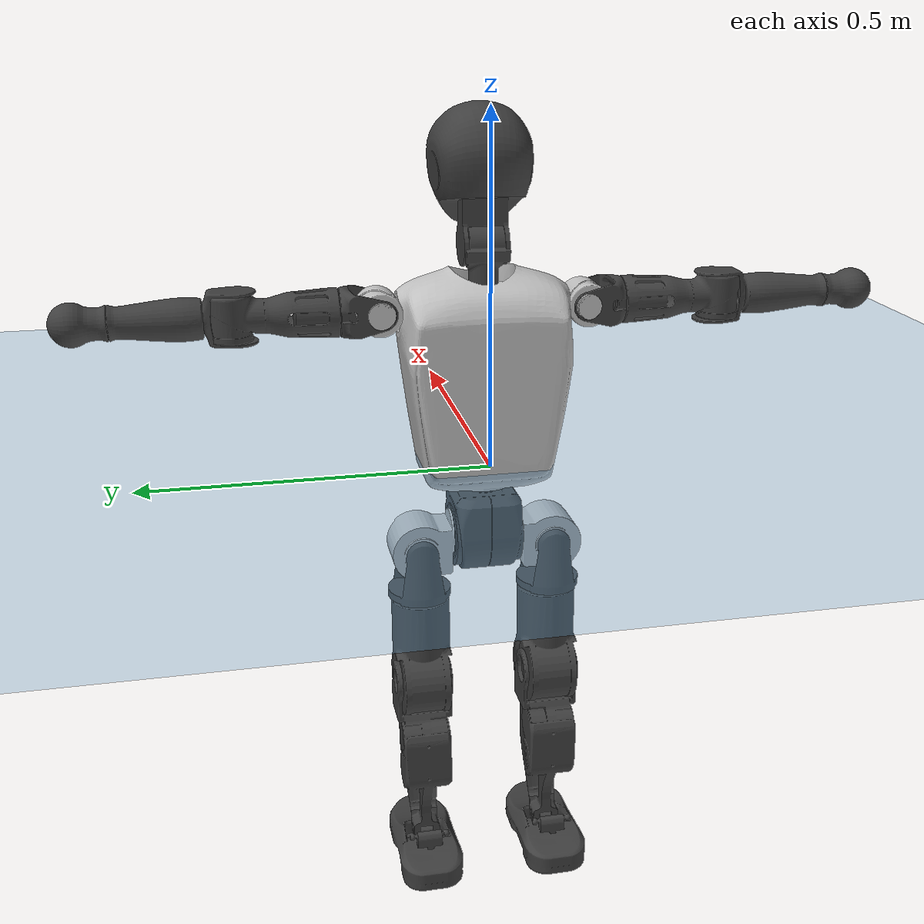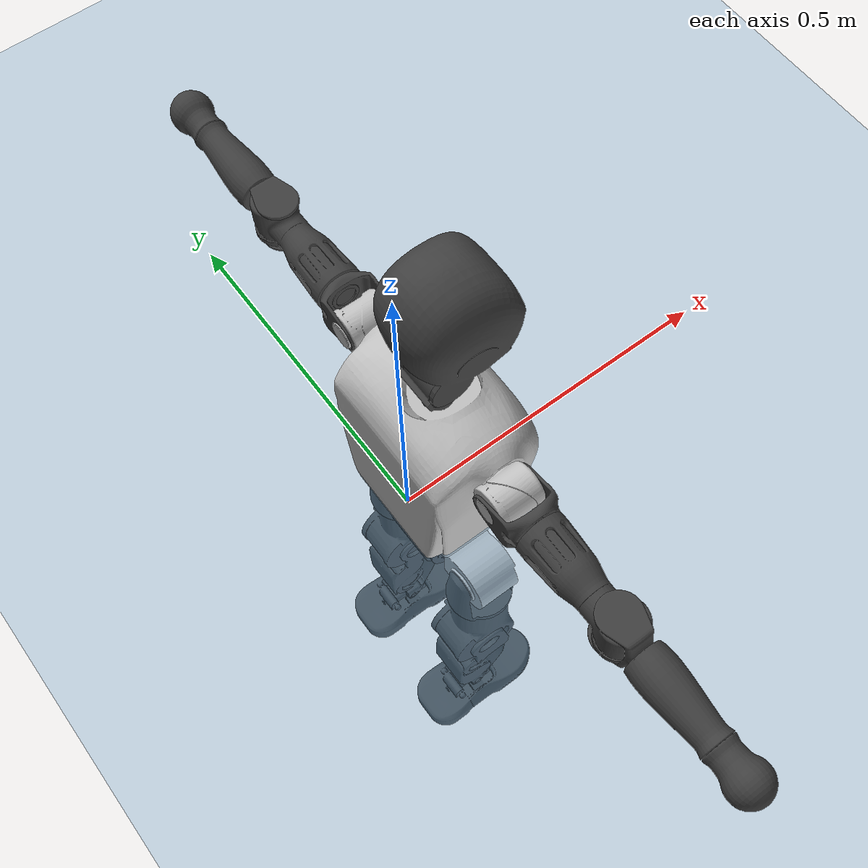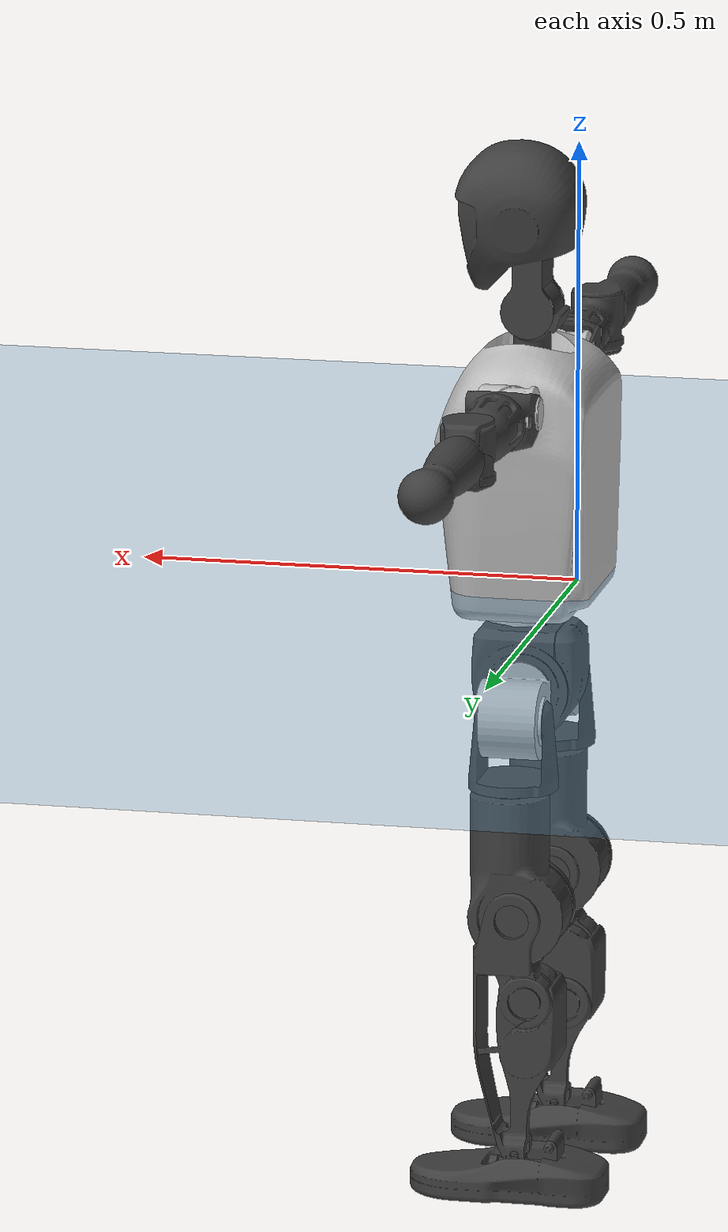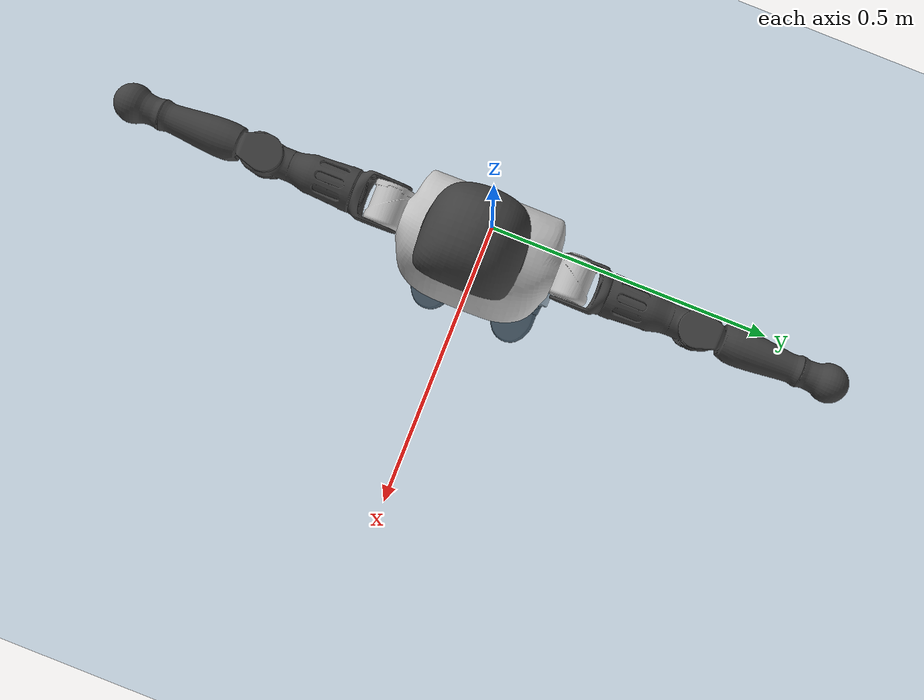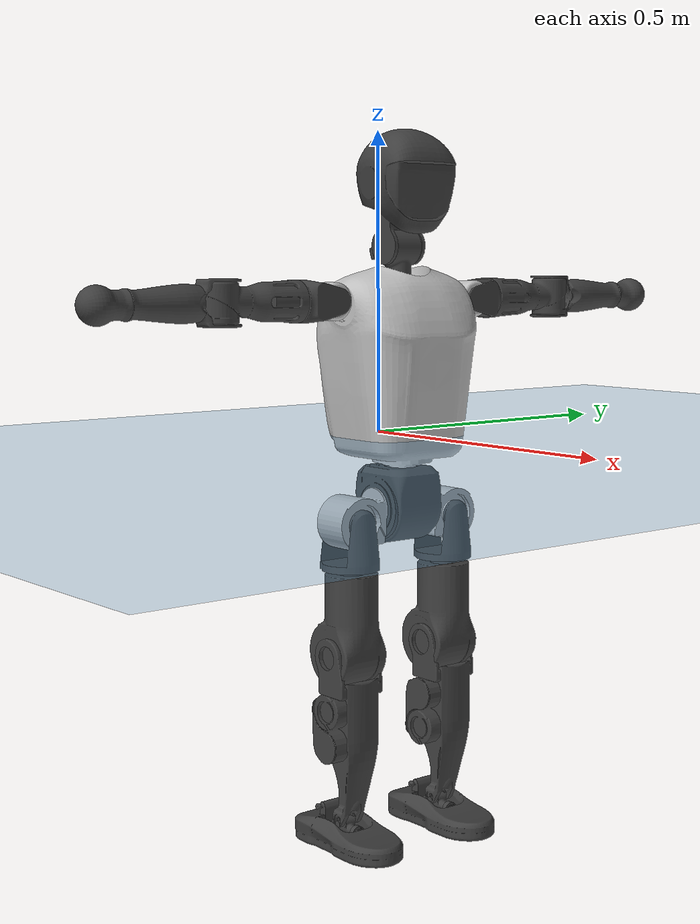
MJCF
<mujoco model="T1">
  <compiler angle="radian" assetdir="assets" balanceinertia="true" inertiafromgeom="false"/>

  <option timestep="0.005" density="1.2" viscosity="2e-05"/>

  <size nkey="1"/>

  <visual>
    <quality shadowsize="8192"/>
    <map shadowclip="0.5"/>
  </visual>

  <default>
    <default class="/">
      <joint armature="0.01" damping="0.01" frictionloss="0.1"/>
      <geom contype="0" conaffinity="0" group="1" solref="-1000 -80"/>
      <site size="0.01 0.005 0.005" group="5"/>
      <general forcelimited="true" biastype="affine" gainprm="25" biasprm="0 -25 -0.6"/>
      <default class="t1">
        <geom rgba="0.25 0.25 0.25 1"/>
        <default class="visual">
          <geom type="mesh" group="2"/>
        </default>
        <default class="collision">
          <geom group="3"/>
        </default>
        <default class="foot">
          <geom size="0.1115 0.05 0.015" type="box" condim="6" group="4" priority="1" solimp="0.015 1 0.015"/>
        </default>
        <default class="reward_collision_sphere">
          <geom group="5" rgba="1 0 0 1"/>
        </default>
      </default>
    </default>
  </default>

  <asset>
    <texture type="skybox" colorspace="auto" name="//unnamed_texture_0" builtin="gradient" rgb1="0.95 0.95 0.95" rgb2="0.95 0.95 0.95" width="100" height="600"/>
    <texture type="2d" colorspace="auto" name="texplane" builtin="checker" rgb1="0.345 0.575 0.748" rgb2="0.345 0.575 0.748" markrgb="1 1 1" width="512" height="512"/>
    <material name="MatPlane" class="/" texture="texplane" texuniform="true" texrepeat="2 2" specular="0.9"/>
    <mesh name="Trunk" class="/" file="Trunk.stl"/>
    <mesh name="H1" class="/" file="H1.stl"/>
    <mesh name="H2" class="/" file="H2.stl"/>
    <mesh name="AL1" class="/" file="AL1.stl"/>
    <mesh name="AL2" class="/" file="AL2.stl"/>
    <mesh name="AL3" class="/" file="AL3.stl"/>
    <mesh name="left_hand_link" class="/" file="left_hand_link.stl"/>
    <mesh name="AR1" class="/" file="AR1.stl"/>
    <mesh name="AR2" class="/" file="AR2.stl"/>
    <mesh name="AR3" class="/" file="AR3.stl"/>
    <mesh name="right_hand_link" class="/" file="right_hand_link.stl"/>
    <mesh name="Waist" class="/" file="Waist.stl"/>
    <mesh name="Hip_Pitch_Left" class="/" file="Hip_Pitch_Left.stl"/>
    <mesh name="Hip_Roll_Left" class="/" file="Hip_Roll_Left.stl"/>
    <mesh name="Hip_Yaw_Left" class="/" file="Hip_Yaw_Left.stl"/>
    <mesh name="Shank_Left" class="/" file="Shank_Left.stl"/>
    <mesh name="Ankle_Cross_Left" class="/" file="Ankle_Cross_Left.stl"/>
    <mesh name="left_foot_link" class="/" file="left_foot_link.stl"/>
    <mesh name="Hip_Pitch_Right" class="/" file="Hip_Pitch_Right.stl"/>
    <mesh name="Hip_Roll_Right" class="/" file="Hip_Roll_Right.stl"/>
    <mesh name="Hip_Yaw_Right" class="/" file="Hip_Yaw_Right.stl"/>
    <mesh name="Shank_Right" class="/" file="Shank_Right.stl"/>
    <mesh name="Ankle_Cross_Right" class="/" file="Ankle_Cross_Right.stl"/>
    <mesh name="right_foot_link" class="/" file="right_foot_link.stl"/>
  </asset>

  <worldbody>
    <geom name="floor" class="/" size="100 100 0.125" type="plane" group="0" material="MatPlane"/>
    <light name="toplight_shadow" class="/" pos="0 0 5" dir="0.0990148 0.0990148 -0.990148" type="directional" ambient="0.04 0.04 0.04" diffuse="0.55 0.55 0.55" specular="0.12 0.12 0.12"/>
    <light name="toplight_fill" class="/" pos="0 0 5" dir="0.0990148 0.0990148 -0.990148" type="directional" castshadow="false" ambient="0.04 0.04 0.04" diffuse="0.3 0.3 0.3" specular="0.08 0.08 0.08"/>
    <body name="trunk" childclass="t1" pos="-0.000290219 -0.000194871 -0.000880926" quat="1 -5.65958e-05 1.60979e-05 3.23658e-05">
      <inertial pos="0.0474935 -0.000231592 0.107331" quat="0.999957 0.000469175 -0.00929582 -0.000489657" mass="9.80461" diaginertia="0.0409915 0.0575281 0.0625029"/>
      <joint name="//unnamed_joint_0" type="free" armature="0" damping="0" frictionloss="0"/>
      <geom name="//unnamed_geom_1" class="visual" rgba="0.76 0.76 0.76 1" mesh="Trunk"/>
      <geom name="//unnamed_geom_2" class="collision" size="0.0705249 0.0940331 0.14105" pos="0.0512 0 0.12271" type="box"/>
      <geom name="//unnamed_geom_3" class="reward_collision_sphere" size="0.108138" pos="0.0512 0 0.102258"/>
      <geom name="//unnamed_geom_4" class="reward_collision_sphere" size="0.014105" pos="0.0512 0.0803314 0"/>
      <geom name="//unnamed_geom_5" class="reward_collision_sphere" size="0.014105" pos="0.0512 -0.0803314 0"/>
      <geom name="//unnamed_geom_6" class="reward_collision_sphere" size="0.014105" pos="0.0512 0.101123 0.184065"/>
      <geom name="//unnamed_geom_7" class="reward_collision_sphere" size="0.014105" pos="0.0512 -0.101123 0.184065"/>
      <site name="imu" pos="-0.00145962 0.00222003 -0.00102" size="0.00940331"/>
      <camera name="track" pos="0 -1.89015 0" quat="0.707107 0.707107 0 0" mode="trackcom"/>
      <camera name="ego_camera" pos="0.104107 0 0.429486" quat="-0.5 -0.5 0.5 0.5"/>
      <body name="H1" pos="0.0527272 -0.000752327 0.248369" quat="1 3.23161e-06 6.93373e-05 -7.59659e-05">
        <inertial pos="-0.00119723 -0.00191085 0.0587444" quat="0.764282 -0.0143568 0.00253134 0.644718" mass="0.370973" diaginertia="0.000109848 0.000168415 0.000167416"/>
        <joint name="AAHead_yaw" pos="0 0 0" axis="-0.00201342 0.00399289 0.99999" stiffness="0.0014173" range="-1.56205 1.56991" armature="0.00953425" damping="0.00652704" frictionloss="0.094858"/>
        <geom name="//unnamed_geom_8" class="visual" mesh="H1"/>
        <body name="H2" pos="0.000226716 0.000720388 0.0629414" quat="1 -0.000369384 8.57556e-05 0.000116616">
          <inertial pos="0.00600335 0.000629131 0.101191" quat="0.988541 0.107214 -0.0733123 -0.076926" mass="0.52139" diaginertia="0.00092007 0.00145407 0.00190556"/>
          <joint name="Head_pitch" pos="0 0 0" axis="0.00305773 -0.999993 0.00204348" range="-1.23084 0.367266" armature="0.00914768" damping="0.0106271" frictionloss="0.0935829"/>
          <geom name="//unnamed_geom_9" class="visual" mesh="H2"/>
          <geom name="//unnamed_geom_10" class="collision" size="0.0752265" pos="0.00853334 0 0.112484"/>
          <geom name="//unnamed_geom_11" class="reward_collision_sphere" size="0.0846298" pos="0.0170667 0 0.102258"/>
        </body>
      </body>
      <body name="AL1" pos="0.0501716 0.101432 0.224106" quat="1 0.000190322 0.000618898 -0.000102399">
        <inertial pos="-0.000384314 0.0417145 -0.00017811" quat="0.504928 0.496343 -0.504378 0.494261" mass="0.438709" diaginertia="0.00061119 0.000976041 0.000327984"/>
        <joint name="Left_Shoulder_Pitch" pos="0 0 0" axis="-0.00181761 0.999998 -0.000184704" range="-3.31727 1.22403" armature="0.00931764" damping="0.00592883" frictionloss="0.0982417"/>
        <geom name="//unnamed_geom_12" class="visual" rgba="0.76 0.76 0.76 1" mesh="AL1"/>
        <body name="AL2" pos="0.00168748 0.0448082 -8.37871e-07" quat="1 6.3451e-06 7.05795e-06 -4.31756e-05">
          <inertial pos="0.0033781 0.0352719 -0.000476045" quat="0.489002 0.511606 -0.488 0.510874" mass="0.131224" diaginertia="0.000179647 0.000257707 0.000193452"/>
          <joint name="Left_Shoulder_Roll" pos="0 0 0" axis="-0.999999 -0.00103328 4.00104e-05" range="-1.5689 1.7441" armature="0.00929016" damping="0.00962909" frictionloss="0.0939347"/>
          <geom name="//unnamed_geom_13" class="visual" mesh="AL2"/>
          <body name="AL3" pos="2.7986e-05 0.0575214 0.000497243" quat="1 -3.93428e-05 -1.60238e-05 -3.35288e-05">
            <inertial pos="-0.00121476 0.0805896 -0.00025908" quat="0.706333 0.707872 -0.00108226 -0.00327552" mass="0.845131" diaginertia="0.00587791 0.00953231 0.000688556"/>
            <joint name="Left_Elbow_Pitch" pos="0 0 0" axis="0.00244271 -0.999995 -0.00210453" range="-2.26631 2.25649" armature="0.00900793" damping="0.00286436" frictionloss="0.0978795"/>
            <geom name="//unnamed_geom_14" class="visual" mesh="AL3"/>
            <geom name="//unnamed_geom_15" class="collision" size="0.0282099 0.0705249" pos="0 0.0472538 0" quat="0.707105 0.707108 0 0" type="cylinder"/>
            <geom name="//unnamed_geom_16" class="reward_collision_sphere" size="0.0338519"/>
            <body name="left_hand_link" pos="0.00129531 0.138617 -4.1108e-05" quat="1 -0.00012846 0.000122786 -0.000237877">
              <inertial pos="0.000292748 0.104093 -0.000313716" quat="0.707975 0.706238 8.9686e-05 -7.52278e-05" mass="0.269982" diaginertia="0.00368234 0.00610198 0.000236776"/>
              <joint name="Left_Elbow_Yaw" pos="0 0 0" axis="0.00550363 0.00496614 0.999973" stiffness="0.00188167" range="-2.43342 -0.00361915" armature="0.00949879" damping="0.0103616" frictionloss="0.0981097"/>
              <geom name="//unnamed_geom_17" class="visual" mesh="left_hand_link"/>
              <geom name="//unnamed_geom_18" class="collision" size="0.0282099 0.082279" pos="0 0.12286 0" quat="0.707105 0.707108 0 0" type="cylinder"/>
              <geom name="//unnamed_geom_19" class="reward_collision_sphere" size="0.0470166"/>
              <geom name="//unnamed_geom_20" class="reward_collision_sphere" size="0.0329116" pos="0 0.103958 0"/>
              <geom name="//unnamed_geom_21" class="reward_collision_sphere" size="0.0329116" pos="0 0.203191 0"/>
            </body>
          </body>
        </body>
      </body>
      <body name="AR1" pos="0.0489532 -0.100728 0.223683" quat="1 0.000102119 0.000449189 4.54995e-05">
        <inertial pos="-0.00122469 -0.0426952 -0.000865472" quat="0.503488 0.498435 -0.501981 0.496062" mass="0.435511" diaginertia="0.000622555 0.000981739 0.000327858"/>
        <joint name="Right_Shoulder_Pitch" pos="0 0 0" axis="-0.000362242 -1 0.000786625" range="-1.22685 3.30815" armature="0.0094522" damping="0.00479298" frictionloss="0.0979126"/>
        <geom name="//unnamed_geom_22" class="visual" rgba="0.76 0.76 0.76 1" mesh="AR1"/>
        <body name="AR2" pos="-0.000998012 -0.0438505 0.000231133" quat="1 -1.07407e-05 -8.98458e-06 -2.50303e-06">
          <inertial pos="0.00318104 -0.0356673 -0.000477817" quat="0.511881 0.487844 -0.511853 0.487845" mass="0.133423" diaginertia="0.00018071 0.0002598 0.000195269"/>
          <joint name="Right_Shoulder_Roll" pos="0 0 0" axis="-0.999994 -0.00262453 -0.00245691" stiffness="0.00324302" range="-1.75616 1.58082" armature="0.00971153" damping="0.0030877" frictionloss="0.0956162"/>
          <geom name="//unnamed_geom_23" class="visual" mesh="AR2"/>
          <body name="AR3" pos="-0.00038079 -0.0579085 0.000521014" quat="1 -5.08858e-06 2.50107e-05 5.39328e-05">
            <inertial pos="-0.000253719 -0.080927 -0.000385483" quat="0.705712 0.708495 0.00228583 0.00116532" mass="0.852642" diaginertia="0.00577015 0.00973846 0.000688394"/>
            <joint name="Right_Elbow_Pitch" pos="0 0 0" axis="-0.00207418 0.999996 -0.00178409" stiffness="0.000491638" range="-2.2896 2.28324" armature="0.00941766" damping="0.00492916" frictionloss="0.0936807"/>
            <geom name="//unnamed_geom_24" class="visual" mesh="AR3"/>
            <geom name="//unnamed_geom_25" class="collision" size="0.0282099 0.0705249" pos="0 -0.0472538 0" quat="0.707105 0.707108 0 0" type="cylinder"/>
            <geom name="//unnamed_geom_26" class="reward_collision_sphere" size="0.0338519"/>
            <body name="right_hand_link" pos="-0.000883639 -0.138962 -0.000716159" quat="1 -2.98287e-05 -0.000107842 -0.000189501">
              <inertial pos="-9.75918e-05 -0.103894 0.0016483" quat="0.705823 0.708388 0.000369932 -0.000157679" mass="0.271552" diaginertia="0.00370332 0.00611482 0.000242247"/>
              <joint name="Right_Elbow_Yaw" pos="0 0 0" axis="0.0017692 0.00244209 0.999995" range="0.00474616 2.43989" armature="0.00938408" damping="0.0107849" frictionloss="0.0899152"/>
              <geom name="//unnamed_geom_27" class="visual" mesh="right_hand_link"/>
              <geom name="//unnamed_geom_28" class="collision" size="0.0282099 0.082279" pos="0 -0.12286 0" quat="0.707105 0.707108 0 0" type="cylinder"/>
              <geom name="//unnamed_geom_29" class="reward_collision_sphere" size="0.0470166"/>
              <geom name="//unnamed_geom_30" class="reward_collision_sphere" size="0.0329116" pos="0 -0.103958 0"/>
              <geom name="//unnamed_geom_31" class="reward_collision_sphere" size="0.0329116" pos="0 -0.203191 0"/>
            </body>
          </body>
        </body>
      </body>
      <body name="Waist" pos="0.0535335 -0.00146164 -0.117642" quat="1 -9.23489e-05 -7.12234e-05 0.000118719">
        <inertial pos="0.000969367 -0.00139736 0.00759138" quat="0.983699 0.000646737 -0.179808 0.00236256" mass="2.13866" diaginertia="0.00240963 0.00397344 0.00525557"/>
        <joint name="Waist" pos="0 0 0" axis="-0.00225131 0.00113078 0.999997" range="-1.56904 1.56816" armature="0.00970552" damping="0.0135222" frictionloss="0.0930598"/>
        <geom name="//unnamed_geom_32" class="visual" mesh="Waist"/>
        <body name="Hip_Pitch_Left" pos="0.000263969 0.0995065 -0.000780924" quat="1 -0.000396355 -0.000586552 -0.00013924">
          <inertial pos="0.00160075 -0.00688693 -0.0183005" quat="0.975188 0.22085 0.0152592 0.00119658" mass="0.837115" diaginertia="0.000810923 0.00108772 0.00139915"/>
          <joint name="Left_Hip_Pitch" pos="0 0 0" axis="-0.000539095 1 4.88165e-05" stiffness="0.00209951" range="-1.80741 1.56901" armature="0.00974322" damping="0.00927259" frictionloss="0.0963956"/>
          <geom name="//unnamed_geom_33" class="visual" rgba="0.76 0.76 0.76 1" mesh="Hip_Pitch_Left"/>
          <body name="Hip_Roll_Left" pos="0.00085237 0.000365185 -0.0216596" quat="1 0.000185649 0.000330924 -5.69546e-05">
            <inertial pos="0.000354119 0.000702347 -0.0552047" quat="0.707041 -0.00649479 -0.00596978 0.707117" mass="0.325062" diaginertia="0.000787451 0.0011449 0.00057662"/>
            <joint name="Left_Hip_Roll" pos="0 0 0" axis="-0.999995 -0.00230263 -0.00217983" range="-1.56955 0.201746" armature="0.00903854" damping="0.00803665" frictionloss="0.0939127"/>
            <geom name="//unnamed_geom_34" class="visual" mesh="Hip_Roll_Left"/>
            <geom name="//unnamed_geom_35" class="reward_collision_sphere" size="0.0517182"/>
            <body name="Hip_Yaw_Left" pos="0.00162909 -0.00137517 -0.0851016" quat="1 -5.06795e-06 -0.000209322 -2.25063e-05">
              <inertial pos="-0.00590719 0.000456152 -0.0912084" quat="0.695825 -0.0338797 -0.0321784 0.71669" mass="1.79781" diaginertia="0.0115949 0.0189971 0.00289924"/>
              <joint name="Left_Hip_Yaw" pos="0 0 0" axis="0.000212936 1.44687e-07 -1" range="-0.999068 1.00803" armature="0.00939482" damping="0.0130087" frictionloss="0.0898253"/>
              <geom name="//unnamed_geom_36" class="visual" mesh="Hip_Yaw_Left"/>
              <geom name="//unnamed_geom_37" class="collision" size="0.0470166 0.0752265" type="cylinder"/>
              <body name="Shank_Left" pos="-0.0107305 0.000602347 -0.136594" quat="1 -0.000147894 -0.000290315 0.000155985">
                <inertial pos="-0.00501708 0.00131226 -0.127545" quat="0.997574 0.00159745 -0.0239019 0.0653651" mass="1.42111" diaginertia="0.0156172 0.0256129 0.00206676"/>
                <joint name="Left_Knee_Pitch" pos="0 0 0" axis="0.00141892 0.999996 -0.00223732" range="-0.00477908 2.34613" armature="0.00906859" damping="0.0138887" frictionloss="0.0939839"/>
                <geom name="//unnamed_geom_38" class="visual" mesh="Shank_Left"/>
                <geom name="//unnamed_geom_39" class="collision" size="0.0470166 0.0705249" pos="0 0 -0.12271" type="cylinder"/>
                <geom name="//unnamed_geom_40" class="reward_collision_sphere" size="0.0611215"/>
                <body name="Ankle_Cross_Left" pos="-0.000838696 0.000524361 -0.286362" quat="1 -2.62299e-05 -0.000199145 -0.000170253">
                  <inertial pos="-0.00296956 -0.000219869 -0.00805291" quat="0.443179 0.551311 0.548605 0.445736" mass="0.0617013" diaginertia="1.30862e-05 1.94388e-05 1.27594e-05"/>
                  <joint name="Left_Ankle_Pitch" pos="0 0 0" axis="-0.000490585 1 -0.000263474" range="-0.880353 0.355434" armature="0.00899055" damping="0.00221826" frictionloss="0.0898462"/>
                  <geom name="//unnamed_geom_41" class="visual" mesh="Ankle_Cross_Left"/>
                  <body name="left_foot_link" pos="0.000484808 0.000400957 -0.0124169" quat="1 4.31682e-05 -6.56782e-05 -0.000280552">
                    <inertial pos="-0.000440711 0.000609518 -0.00949063" quat="0.0015394 0.619389 0.00204985 0.78508" mass="0.577389" diaginertia="0.00124571 0.00181939 0.00250419"/>
                    <joint name="Left_Ankle_Roll" pos="0 0 0" axis="-0.999985 -0.00538526 0.000146551" range="-0.438357 0.451198" armature="0.0094074" damping="0.0082551" frictionloss="0.0990781"/>
                    <geom name="//unnamed_geom_42" class="visual" mesh="left_foot_link"/>
                    <geom name="left_foot" class="foot" size="0.102575 0.047038 0.015009" pos="0.00853334 0 -0.0153388"/>
                    <geom name="//unnamed_geom_44" class="reward_collision_sphere" size="0.0488972" pos="0.00853334 0 -0.0153388"/>
                    <geom name="//unnamed_geom_45" class="reward_collision_sphere" size="0.0282099" pos="0.0810667 -0.0217367 -0.0153388"/>
                    <geom name="//unnamed_geom_46" class="reward_collision_sphere" size="0.0282099" pos="-0.0597334 -0.0217367 -0.0153388"/>
                    <site name="left_foot" class="foot" pos="0.00853334 0 -0.0153388" size="0.00940331"/>
                  </body>
                </body>
              </body>
            </body>
          </body>
        </body>
        <body name="Hip_Pitch_Right" pos="-0.000511528 -0.0998602 -0.000147584" quat="1 -0.000227809 0.000119246 -0.000288393">
          <inertial pos="0.000595183 0.00708258 -0.0176792" quat="0.973119 -0.229792 0.0152234 -0.00180159" mass="0.844637" diaginertia="0.000808913 0.00108255 0.0013849"/>
          <joint name="Right_Hip_Pitch" pos="0 0 0" axis="-0.000185833 -0.999997 -0.00240027" range="-1.57743 1.81723" armature="0.00940135" damping="0.00785273" frictionloss="0.0948329"/>
          <geom name="//unnamed_geom_47" class="visual" rgba="0.76 0.76 0.76 1" mesh="Hip_Pitch_Right"/>
          <body name="Hip_Roll_Right" pos="-0.000884819 -8.98565e-05 -0.0204761" quat="1 -0.000173668 7.41085e-05 -1.00167e-05">
            <inertial pos="0.00140672 -0.00104331 -0.0549011" quat="0.706287 -0.0035986 -0.00851788 0.707865" mass="0.32437" diaginertia="0.000791075 0.00114625 0.000580406"/>
            <joint name="Right_Hip_Roll" pos="0 0 0" axis="-0.999999 -0.00112057 -0.000220166" range="-0.210513 1.57324" armature="0.00983486" damping="0.00675802" frictionloss="0.0943041"/>
            <geom name="//unnamed_geom_48" class="visual" mesh="Hip_Roll_Right"/>
            <geom name="//unnamed_geom_49" class="reward_collision_sphere" size="0.0517182"/>
            <body name="Hip_Yaw_Right" pos="0.000502017 0.000949352 -0.083892" quat="1 0.000180402 -1.82674e-05 -5.89461e-05">
              <inertial pos="-0.00492703 -0.000681385 -0.0920467" quat="0.713593 -0.0293871 -0.0329747 0.699167" mass="1.8071" diaginertia="0.0117072 0.0192242 0.00292029"/>
              <joint name="Right_Hip_Yaw" pos="0 0 0" axis="-0.00509695 0.00218732 -0.999985" stiffness="0.00203027" range="-1.00868 1.02272" armature="0.00931301" damping="0.0110971" frictionloss="0.0936904"/>
              <geom name="//unnamed_geom_50" class="visual" mesh="Hip_Yaw_Right"/>
              <geom name="//unnamed_geom_51" class="collision" size="0.0470166 0.0752265" type="cylinder"/>
              <body name="Shank_Right" pos="-0.0121007 -0.000971503 -0.138169" quat="1 1.2978e-05 4.03098e-05 1.7536e-05">
                <inertial pos="-0.00443118 0.000155091 -0.124859" quat="0.99932 -0.00184419 -0.0226798 -0.029013" mass="1.51201" diaginertia="0.0159946 0.0264163 0.00220726"/>
                <joint name="Right_Knee_Pitch" pos="0 0 0" axis="-0.000778596 -0.999953 0.00964045" range="-2.34144 0.00430441" armature="0.00899664" damping="0.00757831" frictionloss="0.0910932"/>
                <geom name="//unnamed_geom_52" class="visual" mesh="Shank_Right"/>
                <geom name="//unnamed_geom_53" class="collision" size="0.0470166 0.0705249" pos="0 0 -0.12271" type="cylinder"/>
                <geom name="//unnamed_geom_54" class="reward_collision_sphere" size="0.0611215"/>
                <body name="Ankle_Cross_Right" pos="0.00111983 -0.00120267 -0.286401" quat="1 -5.71811e-05 3.64436e-07 0.000215818">
                  <inertial pos="-0.00362355 9.05657e-05 -0.00843963" quat="0.443054 0.551075 0.550995 0.443198" mass="0.0604419" diaginertia="1.30947e-05 1.93289e-05 1.26616e-05"/>
                  <joint name="Right_Ankle_Pitch" pos="0 0 0" axis="0.000327649 -1 -0.000179076" range="-0.335397 0.879034" armature="0.00954467" damping="0.00442192" frictionloss="0.0936966"/>
                  <geom name="//unnamed_geom_55" class="visual" mesh="Ankle_Cross_Right"/>
                  <body name="right_foot_link" pos="9.71658e-05 -0.00089503 -0.0116968" quat="1 -3.22099e-05 3.15266e-05 0.00026205">
                    <inertial pos="0.000639585 -0.000321861 -0.00940967" quat="-9.74983e-05 0.620247 -0.00028988 0.784406" mass="0.569379" diaginertia="0.00121607 0.00181841 0.00244926"/>
                    <joint name="Right_Ankle_Roll" pos="0 0 0" axis="-1 9.73117e-05 -0.000552431" range="-0.456663 0.453844" armature="0.00943999" damping="0.00831188" frictionloss="0.0962514"/>
                    <geom name="//unnamed_geom_56" class="visual" mesh="right_foot_link"/>
                    <geom name="right_foot" class="foot" size="0.0980081 0.0456274 0.0141869" pos="0.00853334 0 -0.0153388"/>
                    <geom name="//unnamed_geom_58" class="reward_collision_sphere" size="0.0376133"/>
                    <geom name="//unnamed_geom_59" class="reward_collision_sphere" size="0.0282099" pos="0.00853334 0 -0.0153388"/>
                    <geom name="//unnamed_geom_60" class="reward_collision_sphere" size="0.0282099" pos="0.0810667 0.0217367 -0.0153388"/>
                    <geom name="//unnamed_geom_61" class="reward_collision_sphere" size="0.0282099" pos="-0.0597334 0.0217367 -0.0153388"/>
                    <site name="right_foot" class="foot" pos="0.00853334 0 -0.0153388" size="0.00940331"/>
                  </body>
                </body>
              </body>
            </body>
          </body>
        </body>
      </body>
    </body>
  </worldbody>

  <contact>
    <pair class="/" geom1="floor" geom2="left_foot" name="//unnamed_contact_0"/>
    <pair class="/" geom1="floor" geom2="right_foot" name="//unnamed_contact_1"/>
  </contact>

  <actuator>
    <general name="AAHead_yaw" class="/" joint="AAHead_yaw" forcerange="-6.5461 6.5461" gainprm="23.1985" biasprm="0 -23.1985 -0.560337"/>
    <general name="Head_pitch" class="/" joint="Head_pitch" forcerange="-6.68966 6.68966" gainprm="23.1985" biasprm="0 -23.1985 -0.560337"/>
    <general name="Left_Shoulder_Pitch" class="/" joint="Left_Shoulder_Pitch" forcerange="-16.853 16.853" gainprm="23.1985" biasprm="0 -23.1985 -0.560337"/>
    <general name="Left_Shoulder_Roll" class="/" joint="Left_Shoulder_Roll" forcerange="-17.351 17.351" gainprm="23.1985" biasprm="0 -23.1985 -0.560337"/>
    <general name="Left_Elbow_Pitch" class="/" joint="Left_Elbow_Pitch" forcerange="-16.6628 16.6628" gainprm="23.1985" biasprm="0 -23.1985 -0.560337"/>
    <general name="Left_Elbow_Yaw" class="/" joint="Left_Elbow_Yaw" forcerange="-17.0215 17.0215" gainprm="23.1985" biasprm="0 -23.1985 -0.560337"/>
    <general name="Right_Shoulder_Pitch" class="/" joint="Right_Shoulder_Pitch" forcerange="-17.1504 17.1504" gainprm="23.1985" biasprm="0 -23.1985 -0.560337"/>
    <general name="Right_Shoulder_Roll" class="/" joint="Right_Shoulder_Roll" forcerange="-17.1776 17.1776" gainprm="23.1985" biasprm="0 -23.1985 -0.560337"/>
    <general name="Right_Elbow_Pitch" class="/" joint="Right_Elbow_Pitch" forcerange="-16.9399 16.9399" gainprm="23.1985" biasprm="0 -23.1985 -0.560337"/>
    <general name="Right_Elbow_Yaw" class="/" joint="Right_Elbow_Yaw" forcerange="-16.7487 16.7487" gainprm="23.1985" biasprm="0 -23.1985 -0.560337"/>
    <general name="Waist" class="/" joint="Waist" forcerange="-28.5984 28.5984" gainprm="23.1985" biasprm="0 -23.1985 -0.560337"/>
    <general name="Left_Hip_Pitch" class="/" joint="Left_Hip_Pitch" forcerange="-42.7275 42.7275" gainprm="23.1985" biasprm="0 -23.1985 -0.560337"/>
    <general name="Left_Hip_Roll" class="/" joint="Left_Hip_Roll" forcerange="-28.3089 28.3089" gainprm="23.1985" biasprm="0 -23.1985 -0.560337"/>
    <general name="Left_Hip_Yaw" class="/" joint="Left_Hip_Yaw" forcerange="-27.6921 27.6921" gainprm="23.1985" biasprm="0 -23.1985 -0.560337"/>
    <general name="Left_Knee_Pitch" class="/" joint="Left_Knee_Pitch" forcerange="-54.8849 54.8849" gainprm="23.1985" biasprm="0 -23.1985 -0.560337"/>
    <general name="Left_Ankle_Pitch" class="/" joint="Left_Ankle_Pitch" forcerange="-18.9496 18.9496" gainprm="23.1985" biasprm="0 -23.1985 -0.560337"/>
    <general name="Left_Ankle_Roll" class="/" joint="Left_Ankle_Roll" forcerange="-14.1358 14.1358" gainprm="23.1985" biasprm="0 -23.1985 -0.560337"/>
    <general name="Right_Hip_Pitch" class="/" joint="Right_Hip_Pitch" forcerange="-42.5073 42.5073" gainprm="23.1985" biasprm="0 -23.1985 -0.560337"/>
    <general name="Right_Hip_Roll" class="/" joint="Right_Hip_Roll" forcerange="-28.0436 28.0436" gainprm="23.1985" biasprm="0 -23.1985 -0.560337"/>
    <general name="Right_Hip_Yaw" class="/" joint="Right_Hip_Yaw" forcerange="-27.4187 27.4187" gainprm="23.1985" biasprm="0 -23.1985 -0.560337"/>
    <general name="Right_Knee_Pitch" class="/" joint="Right_Knee_Pitch" forcerange="-56.3188 56.3188" gainprm="23.1985" biasprm="0 -23.1985 -0.560337"/>
    <general name="Right_Ankle_Pitch" class="/" joint="Right_Ankle_Pitch" forcerange="-19.0316 19.0316" gainprm="23.1985" biasprm="0 -23.1985 -0.560337"/>
    <general name="Right_Ankle_Roll" class="/" joint="Right_Ankle_Roll" forcerange="-14.1138 14.1138" gainprm="23.1985" biasprm="0 -23.1985 -0.560337"/>
  </actuator>

  <sensor>
    <gyro site="imu" name="imu_angular_velocity"/>
    <velocimeter site="imu" name="imu_linear_velocity"/>
    <framelinvel objtype="site" objname="left_foot" name="left_foot_global_linear_velocity"/>
    <framelinvel objtype="site" objname="right_foot" name="right_foot_global_linear_velocity"/>
  </sensor>

  <keyframe>
    <key name="home" qpos="0 0 0.6385 1 0 0 0 0 0 0 1.4 0 -0.4 0 -1.4 0 0.4 0 -0.4 0 0 0.8 -0.4 0 0.4 0 0 -0.8 0.4 0"/>
  </keyframe>
</mujoco>
